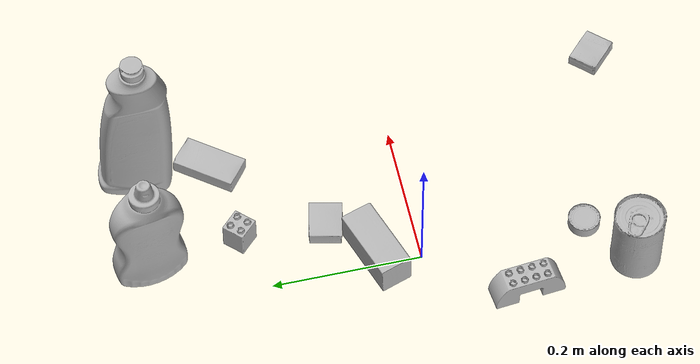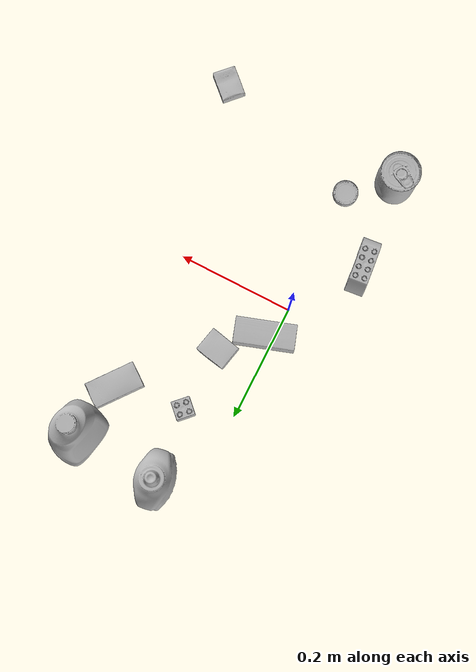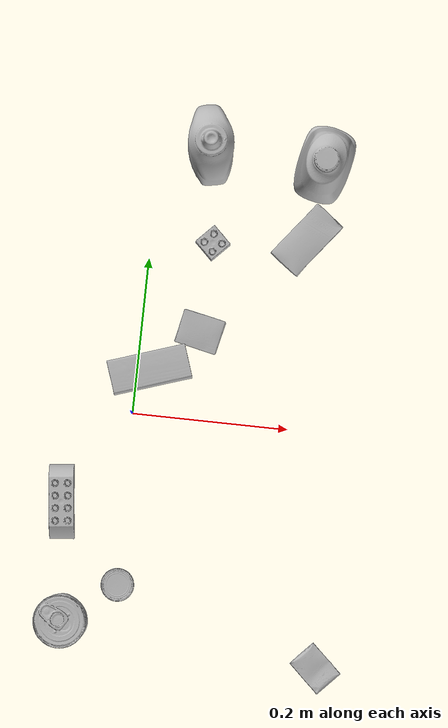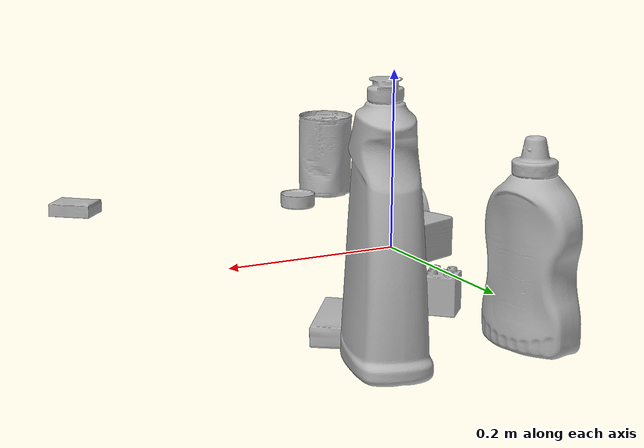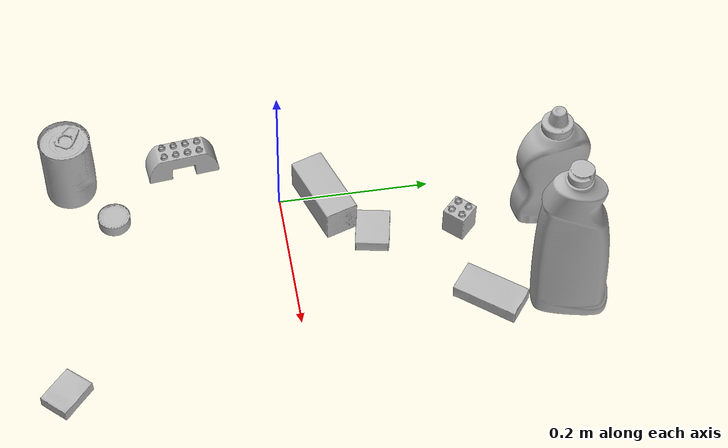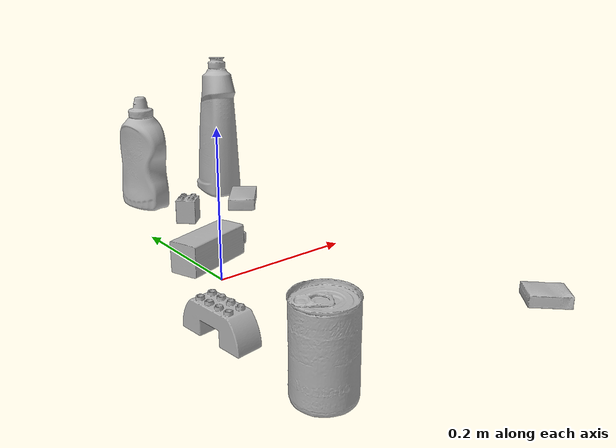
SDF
<sdf version="1.4">
  <world name="default">
    <light name="light1" type="point">
      <pose>0 0 1 0 0 0</pose>
      <diffuse>3 3 3 1</diffuse>
      <specular>3 3 3 1</specular>
    </light>
    <light name="light2" type="point">
      <pose>0 0.5 2 0 0 0</pose>
      <diffuse>1 1 1 1</diffuse>
      <specular>1 1 1 1</specular>
    </light>
    <light name="light3" type="point">
      <pose>0 0.5 2 0 0 0</pose>
      <diffuse>3 3 3 1</diffuse>
      <specular>3 3 3 1</specular>
    </light>
    <scene>
      <ambient>0.7 0.7 0.7</ambient>
    </scene>
    <model name="bottle1">
      <link name="link_bottle1">
        <collision name="default">
          <geometry>
            <mesh>
              <uri>model://bleach_cleanser/collision_meshes/collision.obj</uri>
              <scale>1.0 1.0 1.0</scale>
            </mesh>
          </geometry>
          <surface>
            <friction>
              <ode>
                <mu>0.5</mu>
                <mu2>0.5</mu2>
              </ode>
            </friction>
          <contact>
        <ode>
            <max_vel>0</max_vel>
            <min_depth>0.0001</min_depth>
            <kp>1e8</kp>
        </ode>
    </contact></surface>
        </collision>
        <visual name="default">
          <geometry>
            <mesh>
              <uri>model://bleach_cleanser/visual_meshes/visual.dae</uri>
              <scale>1.0 1.0 1.0</scale>
            </mesh>
          </geometry>
        </visual>
        <inertial>
          <mass>0.7954697608947754</mass>
          <pose>0.00012193184375064448 0.0037838825955986977 -0.02442161552608013 -0.0738167061583634 0.000420116841178447 -0.006875049257496471</pose>
          <inertia>
            <ixx>0.003871667</ixx>
            <iyy>0.0036078263</iyy>
            <izz>0.00066195446</izz>
            <ixy>0</ixy>
            <ixz>0</ixz>
            <iyz>0</iyz>
          </inertia>
        </inertial>
      </link>
      <pose>0.21058349311351776 0.3412920832633972 0.12578417360782623 -0.0001988250130213505 1.621995714120567e-05 2.9344726020228142</pose>
    </model>
    <model name="bottle2">
      <link name="link_bottle2">
        <collision name="default">
          <geometry>
            <mesh>
              <uri>model://mustard_bottle/collision_meshes/collision.obj</uri>
              <scale>1.0 1.0 1.0</scale>
            </mesh>
          </geometry>
          <surface>
            <friction>
              <ode>
                <mu>0.5</mu>
                <mu2>0.5</mu2>
              </ode>
            </friction>
          <contact>
        <ode>
            <max_vel>0</max_vel>
            <min_depth>0.0001</min_depth>
            <kp>1e8</kp>
        </ode>
    </contact></surface>
        </collision>
        <visual name="default">
          <geometry>
            <mesh>
              <uri>model://mustard_bottle/visual_meshes/visual.dae</uri>
              <scale>1.0 1.0 1.0</scale>
            </mesh>
          </geometry>
        </visual>
        <inertial>
          <mass>0.5118113160133362</mass>
          <pose>0.0005032453336752951 -0.00015647397958673537 -0.017475785687565804 0.0004182313596805905 0.000946575919178121 0.024853765212265823</pose>
          <inertia>
            <ixx>0.00142123</ixx>
            <iyy>0.0012470091</iyy>
            <izz>0.0003745659</izz>
            <ixy>0</ixy>
            <ixz>0</ixz>
            <iyz>0</iyz>
          </inertia>
        </inertial>
      </link>
      <pose>0.06471410393714905 0.34834566712379456 0.09583087265491486 -0.01205037640207487 -0.004890168681152152 -2.9700800015687925</pose>
    </model>
    <model name="toy1">
      <link name="link_toy1">
        <collision name="default">
          <geometry>
            <mesh>
              <uri>model://b_lego_duplo/collision_meshes/collision.obj</uri>
              <scale>1.0 1.0 1.0</scale>
            </mesh>
          </geometry>
          <surface>
            <friction>
              <ode>
                <mu>0.5</mu>
                <mu2>0.5</mu2>
              </ode>
            </friction>
          <contact>
        <ode>
            <max_vel>0</max_vel>
            <min_depth>0.0001</min_depth>
            <kp>1e8</kp>
        </ode>
    </contact></surface>
        </collision>
        <visual name="default">
          <geometry>
            <mesh>
              <uri>model://b_lego_duplo/visual_meshes/visual.dae</uri>
              <scale>1.0 1.0 1.0</scale>
            </mesh>
          </geometry>
        </visual>
        <inertial>
          <mass>0.04622781649231911</mass>
          <pose>-0.00011053043272113428 -9.152668098977301e-06 0.0019294294761493802 -0.037494565787594906 -0.026354503997733224 0.45188645636516256</pose>
          <inertia>
            <ixx>9.46087e-06</ixx>
            <iyy>9.524471e-06</iyy>
            <izz>8.429326e-06</izz>
            <ixy>0</ixy>
            <ixz>0</ixz>
            <iyz>0</iyz>
          </inertia>
        </inertial>
      </link>
      <pose>0.07945090532302856 0.22753316164016724 0.021815000101923943 -5.511909943934037e-07 7.897891245817164e-07 2.37352070165007</pose>
    </model>
    <model name="toy2">
      <link name="link_toy2">
        <collision name="default">
          <geometry>
            <mesh>
              <uri>model://e_lego_duplo/collision_meshes/collision.obj</uri>
              <scale>1.0 1.0 1.0</scale>
            </mesh>
          </geometry>
          <surface>
            <friction>
              <ode>
                <mu>0.5</mu>
                <mu2>0.5</mu2>
              </ode>
            </friction>
          <contact>
        <ode>
            <max_vel>0</max_vel>
            <min_depth>0.0001</min_depth>
            <kp>1e8</kp>
        </ode>
    </contact></surface>
        </collision>
        <visual name="default">
          <geometry>
            <mesh>
              <uri>model://e_lego_duplo/visual_meshes/visual.dae</uri>
              <scale>1.0 1.0 1.0</scale>
            </mesh>
          </geometry>
        </visual>
        <inertial>
          <mass>0.08809097856283188</mass>
          <pose>0.00032560486579313874 0.00023485404381062835 0.0019521467620506883 -0.022567425824888195 -6.82459351116558e-05 -0.007625145117383363</pose>
          <inertia>
            <ixx>1.836988e-05</ixx>
            <iyy>7.539474e-05</iyy>
            <izz>7.34193e-05</izz>
            <ixy>0</ixy>
            <ixz>0</ixz>
            <iyz>0</iyz>
          </inertia>
        </inertial>
      </link>
      <pose>-0.0780099481344223 -0.12192583829164505 0.02180895023047924 1.0495145582712836e-06 8.339194001354132e-08 1.6825679338623831</pose>
    </model>
    <model name="can1">
      <link name="link_can1">
        <collision name="default">
          <geometry>
            <mesh>
              <uri>model://tomato_soup_can/collision_meshes/collision.obj</uri>
              <scale>1.0 1.0 1.0</scale>
            </mesh>
          </geometry>
          <surface>
            <friction>
              <ode>
                <mu>0.5</mu>
                <mu2>0.5</mu2>
              </ode>
            </friction>
          <contact>
        <ode>
            <max_vel>0</max_vel>
            <min_depth>0.0001</min_depth>
            <kp>1e8</kp>
        </ode>
    </contact></surface>
        </collision>
        <visual name="default">
          <geometry>
            <mesh>
              <uri>model://tomato_soup_can/visual_meshes/visual.dae</uri>
              <scale>1.0 1.0 1.0</scale>
            </mesh>
          </geometry>
        </visual>
        <inertial>
          <mass>0.4347945749759674</mass>
          <pose>0.0001265227037947625 0.00010805525380419567 -0.0017973979702219367 0.007020064127759274 0.0004229940757469139 -0.009903323281130803</pose>
          <inertia>
            <ixx>0.00047671542</ixx>
            <iyy>0.00047396024</iyy>
            <izz>0.00024707714</izz>
            <ixy>0</ixy>
            <ixz>0</ixz>
            <iyz>0</iyz>
          </inertia>
        </inertial>
      </link>
      <pose>-0.0626799687743187 -0.2723408341407776 0.05127400904893875 -3.983548748961509e-07 -8.968210210555982e-07 -2.408513100948411</pose>
    </model>
    <model name="can2">
      <link name="link_can2">
        <collision name="default">
          <geometry>
            <mesh>
              <uri>model://tuna_fish_can/collision_meshes/collision.obj</uri>
              <scale>0.5 0.5 0.5</scale>
            </mesh>
          </geometry>
          <surface>
            <friction>
              <ode>
                <mu>0.5</mu>
                <mu2>0.5</mu2>
              </ode>
            </friction>
          <contact>
        <ode>
            <max_vel>0</max_vel>
            <min_depth>0.0001</min_depth>
            <kp>1e8</kp>
        </ode>
    </contact></surface>
        </collision>
        <visual name="default">
          <geometry>
            <mesh>
              <uri>model://tuna_fish_can/visual_meshes/visual.dae</uri>
              <scale>0.5 0.5 0.5</scale>
            </mesh>
          </geometry>
        </visual>
        <inertial>
          <mass>0.02951119653880596</mass>
          <pose>-2.0361847418826073e-05 -7.256335720740026e-06 -0.0005269026733003557 -0.0017944763161136105 0.00017161533088142807 0.2405366956082085</pose>
          <inertia>
            <ixx>3.989958e-06</ixx>
            <iyy>3.9733272e-06</iyy>
            <izz>6.827389e-06</izz>
            <ixy>0</ixy>
            <ixz>0</ixz>
            <iyz>0</iyz>
          </inertia>
        </inertial>
      </link>
      <pose>0.003979374188929796 -0.22052013874053955 0.008520001545548439 3.774663334602512e-08 4.369988235243658e-08 1.8661691757014094</pose>
    </model>
    <model name="box1">
      <link name="link_box1">
        <collision name="default">
          <geometry>
            <mesh>
              <uri>model://sugar_box/collision_meshes/collision.obj</uri>
              <scale>0.5 0.5 0.5</scale>
            </mesh>
          </geometry>
          <surface>
            <friction>
              <ode>
                <mu>0.5</mu>
                <mu2>0.5</mu2>
              </ode>
            </friction>
          <contact>
        <ode>
            <max_vel>0</max_vel>
            <min_depth>0.0001</min_depth>
            <kp>1e8</kp>
        </ode>
    </contact></surface>
        </collision>
        <visual name="default">
          <geometry>
            <mesh>
              <uri>model://sugar_box/visual_meshes/visual.dae</uri>
              <scale>0.5 0.5 0.5</scale>
            </mesh>
          </geometry>
        </visual>
        <inertial>
          <mass>0.10932230949401855</mass>
          <pose>0.0005171863595023751 1.924554817378521e-05 -0.00018182402709499002 -0.00040462630024242077 0.0010506636385781449 0.0026153787888990553</pose>
          <inertia>
            <ixx>2.277176e-05</ixx>
            <iyy>7.3603005e-05</iyy>
            <izz>8.811158e-05</izz>
            <ixy>0</ixy>
            <ixz>0</ixz>
            <iyz>0</iyz>
          </inertia>
        </inertial>
      </link>
      <pose>0.19909322261810303 0.2446041703224182 0.011425148695707321 -0.012261958044297291 -0.017918259238638226 -2.2333486903823196</pose>
    </model>
    <model name="box2">
      <link name="link_box2">
        <collision name="default">
          <geometry>
            <mesh>
              <uri>model://pudding_box/collision_meshes/collision.obj</uri>
              <scale>0.5 0.5 0.5</scale>
            </mesh>
          </geometry>
          <surface>
            <friction>
              <ode>
                <mu>0.5</mu>
                <mu2>0.5</mu2>
              </ode>
            </friction>
          <contact>
        <ode>
            <max_vel>0</max_vel>
            <min_depth>0.0001</min_depth>
            <kp>1e8</kp>
        </ode>
    </contact></surface>
        </collision>
        <visual name="default">
          <geometry>
            <mesh>
              <uri>model://pudding_box/visual_meshes/visual.dae</uri>
              <scale>0.5 0.5 0.5</scale>
            </mesh>
          </geometry>
        </visual>
        <inertial>
          <mass>0.061322033405303955</mass>
          <pose>0.00024474109522998333 0.00040339428232982755 -0.0002594413817860186 0.0052131013423229325 -0.006603797777692156 0.020079823300565562</pose>
          <inertia>
            <ixx>1.733035e-05</ixx>
            <iyy>1.1659984e-05</iyy>
            <izz>2.559279e-05</izz>
            <ixy>0</ixy>
            <ixz>0</ixz>
            <iyz>0</iyz>
          </inertia>
        </inertial>
      </link>
      <pose>0.07506625354290009 0.11302521079778671 0.009862903505563736 0.022350167573443585 -0.011390481307668001 1.3582663259756595</pose>
    </model>
    <model name="box3">
      <link name="link_box3">
        <collision name="default">
          <geometry>
            <mesh>
              <uri>model://cracker_box/collision_meshes/collision.obj</uri>
              <scale>0.25 0.25 0.25</scale>
            </mesh>
          </geometry>
          <surface>
            <friction>
              <ode>
                <mu>0.5</mu>
                <mu2>0.5</mu2>
              </ode>
            </friction>
          <contact>
        <ode>
            <max_vel>0</max_vel>
            <min_depth>0.0001</min_depth>
            <kp>1e8</kp>
        </ode>
    </contact></surface>
        </collision>
        <visual name="default">
          <geometry>
            <mesh>
              <uri>model://cracker_box/visual_meshes/visual.dae</uri>
              <scale>0.25 0.25 0.25</scale>
            </mesh>
          </geometry>
        </visual>
        <inertial>
          <mass>0.05027599632740021</mass>
          <pose>0.00023660380975343287 6.358561222441494e-05 -0.00042573834070935845 -0.0003162076618733006 -0.011106490531610344 0.00254679570085012</pose>
          <inertia>
            <ixx>7.992481e-06</ixx>
            <iyy>1.3197154e-05</iyy>
            <izz>1.8833553e-05</izz>
            <ixy>0</ixy>
            <ixz>0</ixz>
            <iyz>0</iyz>
          </inertia>
        </inertial>
      </link>
      <pose>0.2669312655925751 -0.30060726404190063 0.009120451286435127 -0.011787881491310576 -0.007367181346778728 2.3880954302025095</pose>
    </model>
    <model name="box4">
      <link name="link_box4">
        <collision name="default">
          <geometry>
            <mesh>
              <uri>model://wood_block/collision_meshes/collision.obj</uri>
              <scale>0.5 0.5 0.5</scale>
            </mesh>
          </geometry>
          <surface>
            <friction>
              <ode>
                <mu>0.5</mu>
                <mu2>0.5</mu2>
              </ode>
            </friction>
          <contact>
        <ode>
            <max_vel>0</max_vel>
            <min_depth>0.0001</min_depth>
            <kp>1e8</kp>
        </ode>
    </contact></surface>
        </collision>
        <visual name="default">
          <geometry>
            <mesh>
              <uri>model://wood_block/visual_meshes/visual.dae</uri>
              <scale>0.5 0.5 0.5</scale>
            </mesh>
          </geometry>
        </visual>
        <inertial>
          <mass>0.30035653710365295</mass>
          <pose>-2.9066577553749084e-06 -0.000285404734313488 0.00013204291462898254 -0.05221128362191582 -0.005192695718477931 -0.0068613783725326285</pose>
          <inertia>
            <ixx>0.00010048062</ixx>
            <iyy>0.00031741828</iyy>
            <izz>0.00031623102</izz>
            <ixy>0</ixy>
            <ixz>0</ixz>
            <iyz>0</iyz>
          </inertia>
        </inertial>
      </link>
      <pose>0.01588224619626999 0.057907648384571075 0.022629257291555405 -0.0052084802825038065 0.005718734466461721 0.3275511174892314</pose>
    </model>
  <physics type="ode">
      <max_contacts>50</max_contacts>
      <ode>
        <solver>
          <type>quick</type>
          <iters>75</iters>
        </solver>
        <constraints>
          <contact_max_correcting_vel>0</contact_max_correcting_vel>
          <contact_surface_layer>0</contact_surface_layer>
        </constraints>
      </ode>
    </physics></world>
</sdf>
